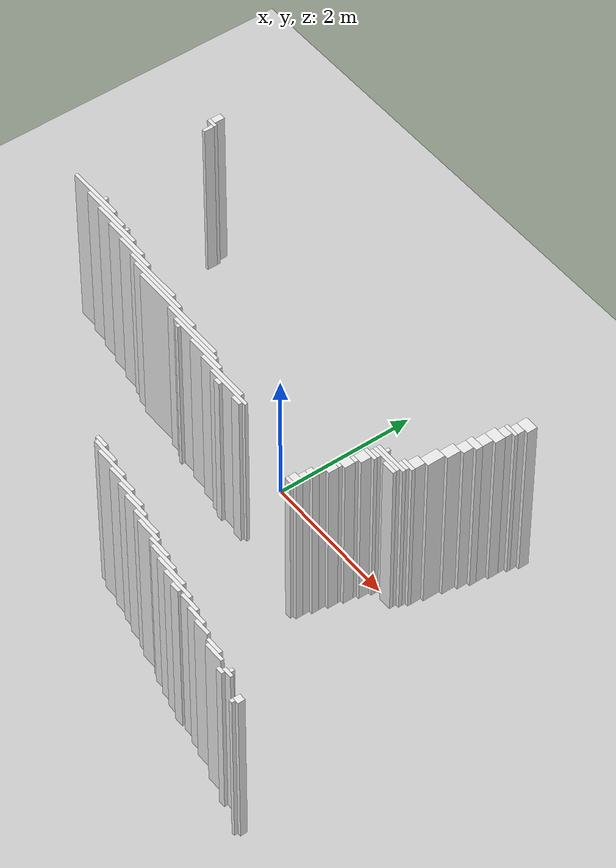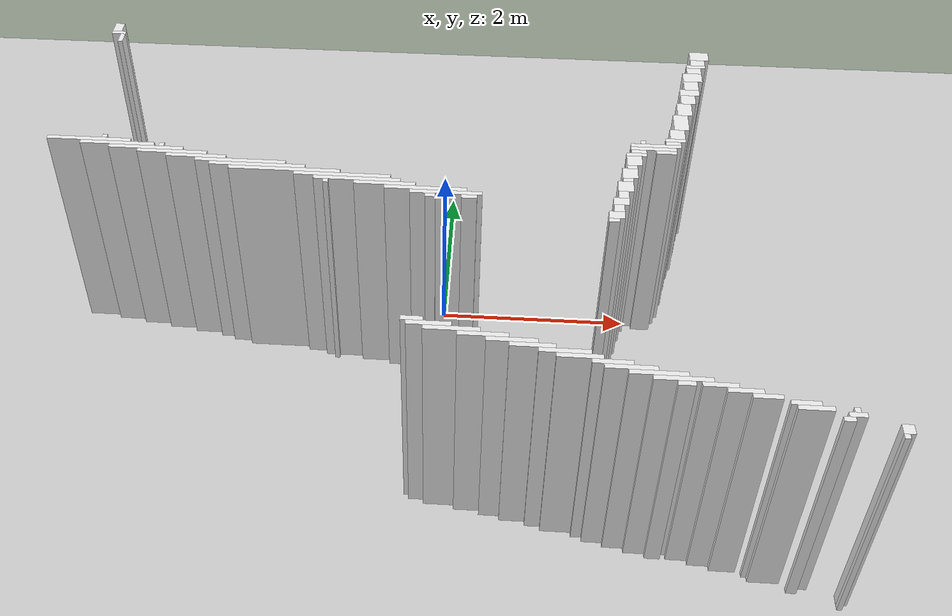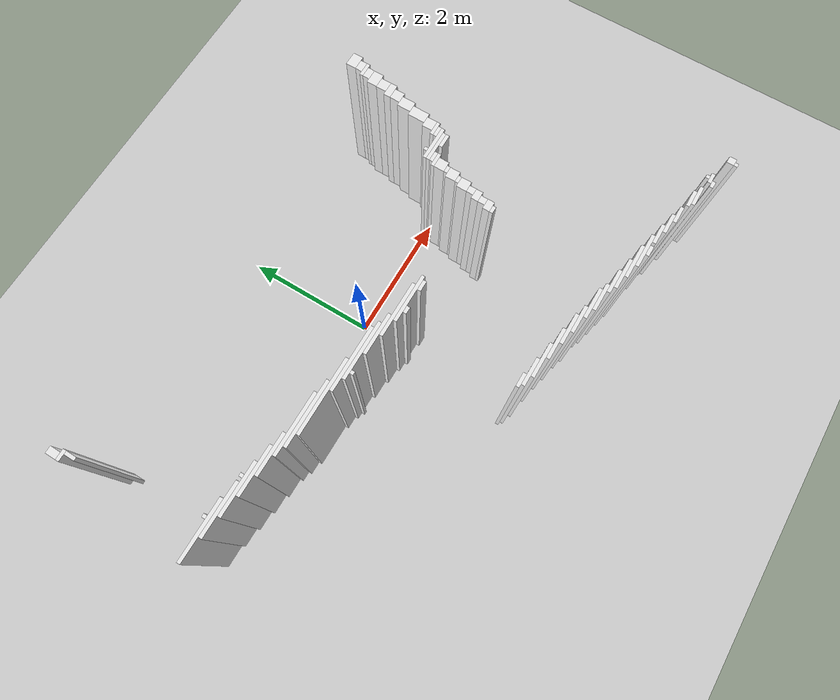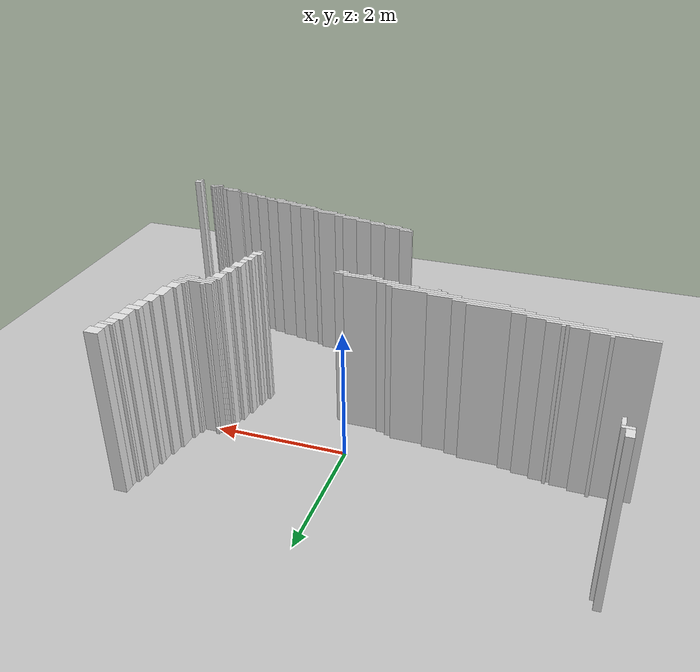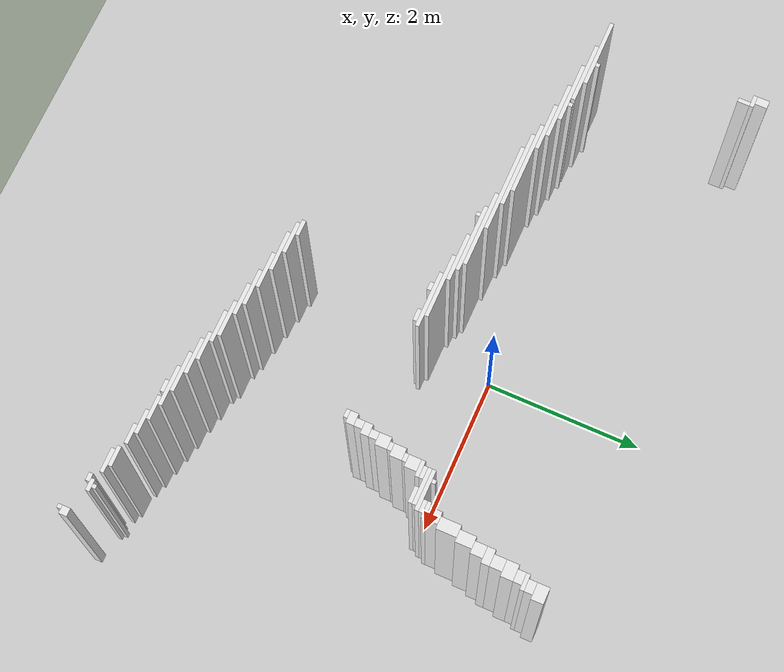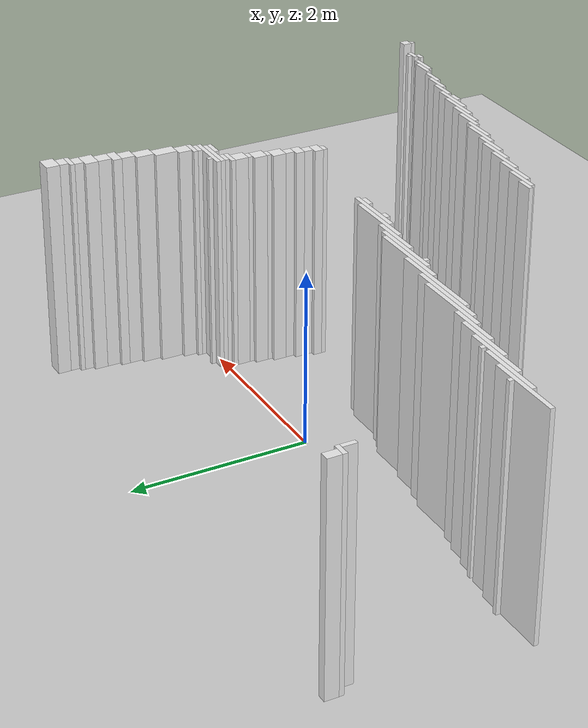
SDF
<sdf version="1.7">
 <world name="occupancy_map_world">
  <model name="ground_plane">
   <static>true</static>
   <link name="link">
    <collision name="collision">
     <geometry><plane><normal>0 0 1</normal><size>25.380000000000003 18.84</size></plane></geometry>
    </collision>
    <visual name="visual">
     <geometry><plane><normal>0 0 1</normal><size>25.380000000000003 18.84</size></plane></geometry>
     <material>
      <script><uri>file://media/materials/scripts/gazebo.material</uri><name>Gazebo/Grey</name></script>
     </material>
    </visual>
   </link>
  </model>
  <model name="wall_36">
   <static>true</static>
   <pose>-3.7540000000000013 1.803 1.25 0 0 0.0</pose>
   <link name="link">
    <collision name="collision">
     <geometry><box><size>0.1 0.15000000000000002 2.5</size></box></geometry>
    </collision>
    <visual name="visual">
     <geometry><box><size>0.1 0.15000000000000002 2.5</size></box></geometry>
     <material>
      <script><uri>file://media/materials/scripts/gazebo.material</uri><name>Gazebo/White</name></script>
     </material>
    </visual>
   </link>
  </model>
  <model name="wall_57">
   <static>true</static>
   <pose>-3.729000000000001 1.7030000000000003 1.25 0 0 0.0</pose>
   <link name="link">
    <collision name="collision">
     <geometry><box><size>0.15000000000000002 0.05 2.5</size></box></geometry>
    </collision>
    <visual name="visual">
     <geometry><box><size>0.15000000000000002 0.05 2.5</size></box></geometry>
     <material>
      <script><uri>file://media/materials/scripts/gazebo.material</uri><name>Gazebo/White</name></script>
     </material>
    </visual>
   </link>
  </model>
  <model name="wall_139">
   <static>true</static>
   <pose>3.521000000000001 -3.2970000000000006 1.25 0 0 0.0</pose>
   <link name="link">
    <collision name="collision"><geometry><box><size>0.05 0.05 2.5</size></box></geometry></collision>
    <visual name="visual">
     <geometry><box><size>0.05 0.05 2.5</size></box></geometry>
     <material>
      <script><uri>file://media/materials/scripts/gazebo.material</uri><name>Gazebo/White</name></script>
     </material>
    </visual>
   </link>
  </model>
  <model name="wall_148">
   <static>true</static>
   <pose>2.596 1.4530000000000003 1.25 0 0 0.0</pose>
   <link name="link">
    <collision name="collision"><geometry><box><size>0.2 0.05 2.5</size></box></geometry></collision>
    <visual name="visual">
     <geometry><box><size>0.2 0.05 2.5</size></box></geometry>
     <material>
      <script><uri>file://media/materials/scripts/gazebo.material</uri><name>Gazebo/White</name></script>
     </material>
    </visual>
   </link>
  </model>
  <model name="wall_207">
   <static>true</static>
   <pose>1.721 -0.8220000000000001 1.25 0 0 0.0</pose>
   <link name="link">
    <collision name="collision">
     <geometry><box><size>0.15000000000000002 0.1 2.5</size></box></geometry>
    </collision>
    <visual name="visual">
     <geometry><box><size>0.15000000000000002 0.1 2.5</size></box></geometry>
     <material>
      <script><uri>file://media/materials/scripts/gazebo.material</uri><name>Gazebo/White</name></script>
     </material>
    </visual>
   </link>
  </model>
  <model name="wall_212">
   <static>true</static>
   <pose>1.7710000000000008 -0.5970000000000004 1.25 0 0 0.0</pose>
   <link name="link">
    <collision name="collision">
     <geometry><box><size>0.15000000000000002 0.15000000000000002 2.5</size></box></geometry>
    </collision>
    <visual name="visual">
     <geometry><box><size>0.15000000000000002 0.15000000000000002 2.5</size></box></geometry>
     <material>
      <script><uri>file://media/materials/scripts/gazebo.material</uri><name>Gazebo/White</name></script>
     </material>
    </visual>
   </link>
  </model>
  <model name="wall_297">
   <static>true</static>
   <pose>-3.6790000000000003 1.6029999999999998 1.25 0 0 0.0</pose>
   <link name="link">
    <collision name="collision">
     <geometry><box><size>0.05 0.15000000000000002 2.5</size></box></geometry>
    </collision>
    <visual name="visual">
     <geometry><box><size>0.05 0.15000000000000002 2.5</size></box></geometry>
     <material>
      <script><uri>file://media/materials/scripts/gazebo.material</uri><name>Gazebo/White</name></script>
     </material>
    </visual>
   </link>
  </model>
  <model name="wall_321">
   <static>true</static>
   <pose>2.646000000000001 1.6529999999999996 1.25 0 0 0.0</pose>
   <link name="link">
    <collision name="collision">
     <geometry><box><size>0.2 0.15000000000000002 2.5</size></box></geometry>
    </collision>
    <visual name="visual">
     <geometry><box><size>0.2 0.15000000000000002 2.5</size></box></geometry>
     <material>
      <script><uri>file://media/materials/scripts/gazebo.material</uri><name>Gazebo/White</name></script>
     </material>
    </visual>
   </link>
  </model>
  <model name="wall_325">
   <static>true</static>
   <pose>2.6209999999999987 1.5279999999999996 1.25 0 0 0.0</pose>
   <link name="link">
    <collision name="collision">
     <geometry><box><size>0.15000000000000002 0.1 2.5</size></box></geometry>
    </collision>
    <visual name="visual">
     <geometry><box><size>0.15000000000000002 0.1 2.5</size></box></geometry>
     <material>
      <script><uri>file://media/materials/scripts/gazebo.material</uri><name>Gazebo/White</name></script>
     </material>
    </visual>
   </link>
  </model>
  <model name="wall_328">
   <static>true</static>
   <pose>2.5710000000000015 1.3780000000000001 1.25 0 0 0.0</pose>
   <link name="link">
    <collision name="collision">
     <geometry><box><size>0.15000000000000002 0.1 2.5</size></box></geometry>
    </collision>
    <visual name="visual">
     <geometry><box><size>0.15000000000000002 0.1 2.5</size></box></geometry>
     <material>
      <script><uri>file://media/materials/scripts/gazebo.material</uri><name>Gazebo/White</name></script>
     </material>
    </visual>
   </link>
  </model>
  <model name="wall_329">
   <static>true</static>
   <pose>2.5459999999999994 1.2530000000000001 1.25 0 0 0.0</pose>
   <link name="link">
    <collision name="collision">
     <geometry><box><size>0.2 0.15000000000000002 2.5</size></box></geometry>
    </collision>
    <visual name="visual">
     <geometry><box><size>0.2 0.15000000000000002 2.5</size></box></geometry>
     <material>
      <script><uri>file://media/materials/scripts/gazebo.material</uri><name>Gazebo/White</name></script>
     </material>
    </visual>
   </link>
  </model>
  <model name="wall_331">
   <static>true</static>
   <pose>2.521000000000001 1.1029999999999998 1.25 0 0 0.0</pose>
   <link name="link">
    <collision name="collision">
     <geometry><box><size>0.15000000000000002 0.15000000000000002 2.5</size></box></geometry>
    </collision>
    <visual name="visual">
     <geometry><box><size>0.15000000000000002 0.15000000000000002 2.5</size></box></geometry>
     <material>
      <script><uri>file://media/materials/scripts/gazebo.material</uri><name>Gazebo/White</name></script>
     </material>
    </visual>
   </link>
  </model>
  <model name="wall_332">
   <static>true</static>
   <pose>2.4959999999999987 0.9779999999999998 1.25 0 0 0.0</pose>
   <link name="link">
    <collision name="collision"><geometry><box><size>0.2 0.1 2.5</size></box></geometry></collision>
    <visual name="visual">
     <geometry><box><size>0.2 0.1 2.5</size></box></geometry>
     <material>
      <script><uri>file://media/materials/scripts/gazebo.material</uri><name>Gazebo/White</name></script>
     </material>
    </visual>
   </link>
  </model>
  <model name="wall_333">
   <static>true</static>
   <pose>2.471 0.8529999999999998 1.25 0 0 0.0</pose>
   <link name="link">
    <collision name="collision">
     <geometry><box><size>0.15000000000000002 0.15000000000000002 2.5</size></box></geometry>
    </collision>
    <visual name="visual">
     <geometry><box><size>0.15000000000000002 0.15000000000000002 2.5</size></box></geometry>
     <material>
      <script><uri>file://media/materials/scripts/gazebo.material</uri><name>Gazebo/White</name></script>
     </material>
    </visual>
   </link>
  </model>
  <model name="wall_334">
   <static>true</static>
   <pose>2.4209999999999994 0.6779999999999999 1.25 0 0 0.0</pose>
   <link name="link">
    <collision name="collision">
     <geometry><box><size>0.15000000000000002 0.2 2.5</size></box></geometry>
    </collision>
    <visual name="visual">
     <geometry><box><size>0.15000000000000002 0.2 2.5</size></box></geometry>
     <material>
      <script><uri>file://media/materials/scripts/gazebo.material</uri><name>Gazebo/White</name></script>
     </material>
    </visual>
   </link>
  </model>
  <model name="wall_335">
   <static>true</static>
   <pose>2.3709999999999987 0.4530000000000003 1.25 0 0 0.0</pose>
   <link name="link">
    <collision name="collision">
     <geometry><box><size>0.15000000000000002 0.25 2.5</size></box></geometry>
    </collision>
    <visual name="visual">
     <geometry><box><size>0.15000000000000002 0.25 2.5</size></box></geometry>
     <material>
      <script><uri>file://media/materials/scripts/gazebo.material</uri><name>Gazebo/White</name></script>
     </material>
    </visual>
   </link>
  </model>
  <model name="wall_336">
   <static>true</static>
   <pose>2.3210000000000015 0.2530000000000001 1.25 0 0 0.0</pose>
   <link name="link">
    <collision name="collision">
     <geometry><box><size>0.15000000000000002 0.15000000000000002 2.5</size></box></geometry>
    </collision>
    <visual name="visual">
     <geometry><box><size>0.15000000000000002 0.15000000000000002 2.5</size></box></geometry>
     <material>
      <script><uri>file://media/materials/scripts/gazebo.material</uri><name>Gazebo/White</name></script>
     </material>
    </visual>
   </link>
  </model>
  <model name="wall_337">
   <static>true</static>
   <pose>2.2959999999999994 0.15299999999999958 1.25 0 0 0.0</pose>
   <link name="link">
    <collision name="collision"><geometry><box><size>0.2 0.05 2.5</size></box></geometry></collision>
    <visual name="visual">
     <geometry><box><size>0.2 0.05 2.5</size></box></geometry>
     <material>
      <script><uri>file://media/materials/scripts/gazebo.material</uri><name>Gazebo/White</name></script>
     </material>
    </visual>
   </link>
  </model>
  <model name="wall_338">
   <static>true</static>
   <pose>1.971 0.10299999999999976 1.25 0 0 0.0</pose>
   <link name="link">
    <collision name="collision"><geometry><box><size>0.05 0.05 2.5</size></box></geometry></collision>
    <visual name="visual">
     <geometry><box><size>0.05 0.05 2.5</size></box></geometry>
     <material>
      <script><uri>file://media/materials/scripts/gazebo.material</uri><name>Gazebo/White</name></script>
     </material>
    </visual>
   </link>
  </model>
  <model name="wall_339">
   <static>true</static>
   <pose>2.271000000000001 0.10299999999999976 1.25 0 0 0.0</pose>
   <link name="link">
    <collision name="collision">
     <geometry><box><size>0.15000000000000002 0.05 2.5</size></box></geometry>
    </collision>
    <visual name="visual">
     <geometry><box><size>0.15000000000000002 0.05 2.5</size></box></geometry>
     <material>
      <script><uri>file://media/materials/scripts/gazebo.material</uri><name>Gazebo/White</name></script>
     </material>
    </visual>
   </link>
  </model>
  <model name="wall_345">
   <static>true</static>
   <pose>2.096 0.052999999999999936 1.25 0 0 0.0</pose>
   <link name="link">
    <collision name="collision"><geometry><box><size>0.5 0.05 2.5</size></box></geometry></collision>
    <visual name="visual">
     <geometry><box><size>0.5 0.05 2.5</size></box></geometry>
     <material>
      <script><uri>file://media/materials/scripts/gazebo.material</uri><name>Gazebo/White</name></script>
     </material>
    </visual>
   </link>
  </model>
  <model name="wall_348">
   <static>true</static>
   <pose>2.0710000000000015 0.0030000000000001137 1.25 0 0 0.0</pose>
   <link name="link">
    <collision name="collision"><geometry><box><size>0.45 0.05 2.5</size></box></geometry></collision>
    <visual name="visual">
     <geometry><box><size>0.45 0.05 2.5</size></box></geometry>
     <material>
      <script><uri>file://media/materials/scripts/gazebo.material</uri><name>Gazebo/White</name></script>
     </material>
    </visual>
   </link>
  </model>
  <model name="wall_351">
   <static>true</static>
   <pose>1.9209999999999994 -0.0470000000000006 1.25 0 0 0.0</pose>
   <link name="link">
    <collision name="collision">
     <geometry><box><size>0.15000000000000002 0.05 2.5</size></box></geometry>
    </collision>
    <visual name="visual">
     <geometry><box><size>0.15000000000000002 0.05 2.5</size></box></geometry>
     <material>
      <script><uri>file://media/materials/scripts/gazebo.material</uri><name>Gazebo/White</name></script>
     </material>
    </visual>
   </link>
  </model>
  <model name="wall_352">
   <static>true</static>
   <pose>2.1960000000000015 -0.0470000000000006 1.25 0 0 0.0</pose>
   <link name="link">
    <collision name="collision"><geometry><box><size>0.2 0.05 2.5</size></box></geometry></collision>
    <visual name="visual">
     <geometry><box><size>0.2 0.05 2.5</size></box></geometry>
     <material>
      <script><uri>file://media/materials/scripts/gazebo.material</uri><name>Gazebo/White</name></script>
     </material>
    </visual>
   </link>
  </model>
  <model name="wall_356">
   <static>true</static>
   <pose>1.8960000000000008 -0.09700000000000042 1.25 0 0 0.0</pose>
   <link name="link">
    <collision name="collision"><geometry><box><size>0.2 0.05 2.5</size></box></geometry></collision>
    <visual name="visual">
     <geometry><box><size>0.2 0.05 2.5</size></box></geometry>
     <material>
      <script><uri>file://media/materials/scripts/gazebo.material</uri><name>Gazebo/White</name></script>
     </material>
    </visual>
   </link>
  </model>
  <model name="wall_361">
   <static>true</static>
   <pose>-3.4290000000000003 -0.14700000000000024 1.25 0 0 0.0</pose>
   <link name="link">
    <collision name="collision"><geometry><box><size>0.05 0.05 2.5</size></box></geometry></collision>
    <visual name="visual">
     <geometry><box><size>0.05 0.05 2.5</size></box></geometry>
     <material>
      <script><uri>file://media/materials/scripts/gazebo.material</uri><name>Gazebo/White</name></script>
     </material>
    </visual>
   </link>
  </model>
  <model name="wall_362">
   <static>true</static>
   <pose>1.8709999999999987 -0.19700000000000006 1.25 0 0 0.0</pose>
   <link name="link">
    <collision name="collision">
     <geometry><box><size>0.15000000000000002 0.15000000000000002 2.5</size></box></geometry>
    </collision>
    <visual name="visual">
     <geometry><box><size>0.15000000000000002 0.15000000000000002 2.5</size></box></geometry>
     <material>
      <script><uri>file://media/materials/scripts/gazebo.material</uri><name>Gazebo/White</name></script>
     </material>
    </visual>
   </link>
  </model>
  <model name="wall_365">
   <static>true</static>
   <pose>-3.5790000000000006 -0.19700000000000006 1.25 0 0 0.0</pose>
   <link name="link">
    <collision name="collision">
     <geometry><box><size>0.8500000000000001 0.05 2.5</size></box></geometry>
    </collision>
    <visual name="visual">
     <geometry><box><size>0.8500000000000001 0.05 2.5</size></box></geometry>
     <material>
      <script><uri>file://media/materials/scripts/gazebo.material</uri><name>Gazebo/White</name></script>
     </material>
    </visual>
   </link>
  </model>
  <model name="wall_366">
   <static>true</static>
   <pose>-3.279 -0.2469999999999999 1.25 0 0 0.0</pose>
   <link name="link">
    <collision name="collision"><geometry><box><size>0.75 0.05 2.5</size></box></geometry></collision>
    <visual name="visual">
     <geometry><box><size>0.75 0.05 2.5</size></box></geometry>
     <material>
      <script><uri>file://media/materials/scripts/gazebo.material</uri><name>Gazebo/White</name></script>
     </material>
    </visual>
   </link>
  </model>
  <model name="wall_367">
   <static>true</static>
   <pose>-2.8290000000000006 -0.2469999999999999 1.25 0 0 0.0</pose>
   <link name="link">
    <collision name="collision"><geometry><box><size>0.05 0.05 2.5</size></box></geometry></collision>
    <visual name="visual">
     <geometry><box><size>0.05 0.05 2.5</size></box></geometry>
     <material>
      <script><uri>file://media/materials/scripts/gazebo.material</uri><name>Gazebo/White</name></script>
     </material>
    </visual>
   </link>
  </model>
  <model name="wall_368">
   <static>true</static>
   <pose>-2.979000000000001 -0.2970000000000006 1.25 0 0 0.0</pose>
   <link name="link">
    <collision name="collision"><geometry><box><size>0.75 0.05 2.5</size></box></geometry></collision>
    <visual name="visual">
     <geometry><box><size>0.75 0.05 2.5</size></box></geometry>
     <material>
      <script><uri>file://media/materials/scripts/gazebo.material</uri><name>Gazebo/White</name></script>
     </material>
    </visual>
   </link>
  </model>
  <model name="wall_369">
   <static>true</static>
   <pose>1.846 -0.2970000000000006 1.25 0 0 0.0</pose>
   <link name="link">
    <collision name="collision"><geometry><box><size>0.1 0.05 2.5</size></box></geometry></collision>
    <visual name="visual">
     <geometry><box><size>0.1 0.05 2.5</size></box></geometry>
     <material>
      <script><uri>file://media/materials/scripts/gazebo.material</uri><name>Gazebo/White</name></script>
     </material>
    </visual>
   </link>
  </model>
  <model name="wall_370">
   <static>true</static>
   <pose>-2.7040000000000006 -0.3470000000000004 1.25 0 0 0.0</pose>
   <link name="link">
    <collision name="collision">
     <geometry><box><size>0.7000000000000001 0.05 2.5</size></box></geometry>
    </collision>
    <visual name="visual">
     <geometry><box><size>0.7000000000000001 0.05 2.5</size></box></geometry>
     <material>
      <script><uri>file://media/materials/scripts/gazebo.material</uri><name>Gazebo/White</name></script>
     </material>
    </visual>
   </link>
  </model>
  <model name="wall_371">
   <static>true</static>
   <pose>1.8210000000000015 -0.39700000000000024 1.25 0 0 0.0</pose>
   <link name="link">
    <collision name="collision">
     <geometry><box><size>0.15000000000000002 0.15000000000000002 2.5</size></box></geometry>
    </collision>
    <visual name="visual">
     <geometry><box><size>0.15000000000000002 0.15000000000000002 2.5</size></box></geometry>
     <material>
      <script><uri>file://media/materials/scripts/gazebo.material</uri><name>Gazebo/White</name></script>
     </material>
    </visual>
   </link>
  </model>
  <model name="wall_372">
   <static>true</static>
   <pose>-2.4540000000000006 -0.39700000000000024 1.25 0 0 0.0</pose>
   <link name="link">
    <collision name="collision">
     <geometry><box><size>0.6000000000000001 0.05 2.5</size></box></geometry>
    </collision>
    <visual name="visual">
     <geometry><box><size>0.6000000000000001 0.05 2.5</size></box></geometry>
     <material>
      <script><uri>file://media/materials/scripts/gazebo.material</uri><name>Gazebo/White</name></script>
     </material>
    </visual>
   </link>
  </model>
  <model name="wall_373">
   <static>true</static>
   <pose>-2.0040000000000013 -0.44700000000000006 1.25 0 0 0.0</pose>
   <link name="link">
    <collision name="collision"><geometry><box><size>0.9 0.05 2.5</size></box></geometry></collision>
    <visual name="visual">
     <geometry><box><size>0.9 0.05 2.5</size></box></geometry>
     <material>
      <script><uri>file://media/materials/scripts/gazebo.material</uri><name>Gazebo/White</name></script>
     </material>
    </visual>
   </link>
  </model>
  <model name="wall_374">
   <static>true</static>
   <pose>-1.8290000000000006 -0.49700000000000033 1.25 0 0 0.0</pose>
   <link name="link">
    <collision name="collision">
     <geometry><box><size>0.9500000000000001 0.05 2.5</size></box></geometry>
    </collision>
    <visual name="visual">
     <geometry><box><size>0.9500000000000001 0.05 2.5</size></box></geometry>
     <material>
      <script><uri>file://media/materials/scripts/gazebo.material</uri><name>Gazebo/White</name></script>
     </material>
    </visual>
   </link>
  </model>
  <model name="wall_375">
   <static>true</static>
   <pose>1.7959999999999994 -0.49700000000000033 1.25 0 0 0.0</pose>
   <link name="link">
    <collision name="collision"><geometry><box><size>0.1 0.05 2.5</size></box></geometry></collision>
    <visual name="visual">
     <geometry><box><size>0.1 0.05 2.5</size></box></geometry>
     <material>
      <script><uri>file://media/materials/scripts/gazebo.material</uri><name>Gazebo/White</name></script>
     </material>
    </visual>
   </link>
  </model>
  <model name="wall_376">
   <static>true</static>
   <pose>-1.554000000000002 -0.5470000000000002 1.25 0 0 0.0</pose>
   <link name="link">
    <collision name="collision"><geometry><box><size>1.1 0.05 2.5</size></box></geometry></collision>
    <visual name="visual">
     <geometry><box><size>1.1 0.05 2.5</size></box></geometry>
     <material>
      <script><uri>file://media/materials/scripts/gazebo.material</uri><name>Gazebo/White</name></script>
     </material>
    </visual>
   </link>
  </model>
  <model name="wall_377">
   <static>true</static>
   <pose>-0.9789999999999992 -0.5970000000000004 1.25 0 0 0.0</pose>
   <link name="link">
    <collision name="collision">
     <geometry><box><size>0.9500000000000001 0.05 2.5</size></box></geometry>
    </collision>
    <visual name="visual">
     <geometry><box><size>0.9500000000000001 0.05 2.5</size></box></geometry>
     <material>
      <script><uri>file://media/materials/scripts/gazebo.material</uri><name>Gazebo/White</name></script>
     </material>
    </visual>
   </link>
  </model>
  <model name="wall_378">
   <static>true</static>
   <pose>-0.8290000000000006 -0.6470000000000002 1.25 0 0 0.0</pose>
   <link name="link">
    <collision name="collision">
     <geometry><box><size>0.8500000000000001 0.05 2.5</size></box></geometry>
    </collision>
    <visual name="visual">
     <geometry><box><size>0.8500000000000001 0.05 2.5</size></box></geometry>
     <material>
      <script><uri>file://media/materials/scripts/gazebo.material</uri><name>Gazebo/White</name></script>
     </material>
    </visual>
   </link>
  </model>
  <model name="wall_379">
   <static>true</static>
   <pose>-1.1290000000000013 -0.6970000000000001 1.25 0 0 0.0</pose>
   <link name="link">
    <collision name="collision"><geometry><box><size>0.05 0.05 2.5</size></box></geometry></collision>
    <visual name="visual">
     <geometry><box><size>0.05 0.05 2.5</size></box></geometry>
     <material>
      <script><uri>file://media/materials/scripts/gazebo.material</uri><name>Gazebo/White</name></script>
     </material>
    </visual>
   </link>
  </model>
  <model name="wall_380">
   <static>true</static>
   <pose>-0.554000000000002 -0.6970000000000001 1.25 0 0 0.0</pose>
   <link name="link">
    <collision name="collision">
     <geometry><box><size>0.6000000000000001 0.05 2.5</size></box></geometry>
    </collision>
    <visual name="visual">
     <geometry><box><size>0.6000000000000001 0.05 2.5</size></box></geometry>
     <material>
      <script><uri>file://media/materials/scripts/gazebo.material</uri><name>Gazebo/White</name></script>
     </material>
    </visual>
   </link>
  </model>
  <model name="wall_381">
   <static>true</static>
   <pose>1.7459999999999987 -0.7220000000000004 1.25 0 0 0.0</pose>
   <link name="link">
    <collision name="collision"><geometry><box><size>0.1 0.1 2.5</size></box></geometry></collision>
    <visual name="visual">
     <geometry><box><size>0.1 0.1 2.5</size></box></geometry>
     <material>
      <script><uri>file://media/materials/scripts/gazebo.material</uri><name>Gazebo/White</name></script>
     </material>
    </visual>
   </link>
  </model>
  <model name="wall_382">
   <static>true</static>
   <pose>-0.15399999999999991 -0.7470000000000003 1.25 0 0 0.0</pose>
   <link name="link">
    <collision name="collision"><geometry><box><size>0.8 0.05 2.5</size></box></geometry></collision>
    <visual name="visual">
     <geometry><box><size>0.8 0.05 2.5</size></box></geometry>
     <material>
      <script><uri>file://media/materials/scripts/gazebo.material</uri><name>Gazebo/White</name></script>
     </material>
    </visual>
   </link>
  </model>
  <model name="wall_383">
   <static>true</static>
   <pose>0.045999999999999375 -0.7970000000000002 1.25 0 0 0.0</pose>
   <link name="link">
    <collision name="collision">
     <geometry><box><size>0.7000000000000001 0.05 2.5</size></box></geometry>
    </collision>
    <visual name="visual">
     <geometry><box><size>0.7000000000000001 0.05 2.5</size></box></geometry>
     <material>
      <script><uri>file://media/materials/scripts/gazebo.material</uri><name>Gazebo/White</name></script>
     </material>
    </visual>
   </link>
  </model>
  <model name="wall_384">
   <static>true</static>
   <pose>-0.1039999999999992 -0.8470000000000004 1.25 0 0 0.0</pose>
   <link name="link">
    <collision name="collision"><geometry><box><size>0.1 0.05 2.5</size></box></geometry></collision>
    <visual name="visual">
     <geometry><box><size>0.1 0.05 2.5</size></box></geometry>
     <material>
      <script><uri>file://media/materials/scripts/gazebo.material</uri><name>Gazebo/White</name></script>
     </material>
    </visual>
   </link>
  </model>
  <model name="wall_385">
   <static>true</static>
   <pose>0.2710000000000008 -0.8470000000000004 1.25 0 0 0.0</pose>
   <link name="link">
    <collision name="collision">
     <geometry><box><size>0.15000000000000002 0.05 2.5</size></box></geometry>
    </collision>
    <visual name="visual">
     <geometry><box><size>0.15000000000000002 0.05 2.5</size></box></geometry>
     <material>
      <script><uri>file://media/materials/scripts/gazebo.material</uri><name>Gazebo/White</name></script>
     </material>
    </visual>
   </link>
  </model>
  <model name="wall_386">
   <static>true</static>
   <pose>1.6960000000000015 -0.9220000000000002 1.25 0 0 0.0</pose>
   <link name="link">
    <collision name="collision"><geometry><box><size>0.1 0.1 2.5</size></box></geometry></collision>
    <visual name="visual">
     <geometry><box><size>0.1 0.1 2.5</size></box></geometry>
     <material>
      <script><uri>file://media/materials/scripts/gazebo.material</uri><name>Gazebo/White</name></script>
     </material>
    </visual>
   </link>
  </model>
  <model name="wall_387">
   <static>true</static>
   <pose>1.6709999999999994 -1.0220000000000002 1.25 0 0 0.0</pose>
   <link name="link">
    <collision name="collision">
     <geometry><box><size>0.15000000000000002 0.1 2.5</size></box></geometry>
    </collision>
    <visual name="visual">
     <geometry><box><size>0.15000000000000002 0.1 2.5</size></box></geometry>
     <material>
      <script><uri>file://media/materials/scripts/gazebo.material</uri><name>Gazebo/White</name></script>
     </material>
    </visual>
   </link>
  </model>
  <model name="wall_388">
   <static>true</static>
   <pose>1.6460000000000008 -1.0970000000000004 1.25 0 0 0.0</pose>
   <link name="link">
    <collision name="collision"><geometry><box><size>0.1 0.05 2.5</size></box></geometry></collision>
    <visual name="visual">
     <geometry><box><size>0.1 0.05 2.5</size></box></geometry>
     <material>
      <script><uri>file://media/materials/scripts/gazebo.material</uri><name>Gazebo/White</name></script>
     </material>
    </visual>
   </link>
  </model>
  <model name="wall_389">
   <static>true</static>
   <pose>-0.15399999999999991 -2.4970000000000003 1.25 0 0 0.0</pose>
   <link name="link">
    <collision name="collision"><geometry><box><size>0.2 0.05 2.5</size></box></geometry></collision>
    <visual name="visual">
     <geometry><box><size>0.2 0.05 2.5</size></box></geometry>
     <material>
      <script><uri>file://media/materials/scripts/gazebo.material</uri><name>Gazebo/White</name></script>
     </material>
    </visual>
   </link>
  </model>
  <model name="wall_390">
   <static>true</static>
   <pose>-0.004000000000001336 -2.5470000000000006 1.25 0 0 0.0</pose>
   <link name="link">
    <collision name="collision"><geometry><box><size>0.4 0.05 2.5</size></box></geometry></collision>
    <visual name="visual">
     <geometry><box><size>0.4 0.05 2.5</size></box></geometry>
     <material>
      <script><uri>file://media/materials/scripts/gazebo.material</uri><name>Gazebo/White</name></script>
     </material>
    </visual>
   </link>
  </model>
  <model name="wall_391">
   <static>true</static>
   <pose>0.19599999999999795 -2.5970000000000004 1.25 0 0 0.0</pose>
   <link name="link">
    <collision name="collision"><geometry><box><size>0.5 0.05 2.5</size></box></geometry></collision>
    <visual name="visual">
     <geometry><box><size>0.5 0.05 2.5</size></box></geometry>
     <material>
      <script><uri>file://media/materials/scripts/gazebo.material</uri><name>Gazebo/White</name></script>
     </material>
    </visual>
   </link>
  </model>
  <model name="wall_392">
   <static>true</static>
   <pose>0.4710000000000001 -2.6470000000000002 1.25 0 0 0.0</pose>
   <link name="link">
    <collision name="collision"><geometry><box><size>0.45 0.05 2.5</size></box></geometry></collision>
    <visual name="visual">
     <geometry><box><size>0.45 0.05 2.5</size></box></geometry>
     <material>
      <script><uri>file://media/materials/scripts/gazebo.material</uri><name>Gazebo/White</name></script>
     </material>
    </visual>
   </link>
  </model>
  <model name="wall_393">
   <static>true</static>
   <pose>0.7210000000000001 -2.697 1.25 0 0 0.0</pose>
   <link name="link">
    <collision name="collision"><geometry><box><size>0.45 0.05 2.5</size></box></geometry></collision>
    <visual name="visual">
     <geometry><box><size>0.45 0.05 2.5</size></box></geometry>
     <material>
      <script><uri>file://media/materials/scripts/gazebo.material</uri><name>Gazebo/White</name></script>
     </material>
    </visual>
   </link>
  </model>
  <model name="wall_394">
   <static>true</static>
   <pose>0.8960000000000008 -2.7470000000000003 1.25 0 0 0.0</pose>
   <link name="link">
    <collision name="collision"><geometry><box><size>0.4 0.05 2.5</size></box></geometry></collision>
    <visual name="visual">
     <geometry><box><size>0.4 0.05 2.5</size></box></geometry>
     <material>
      <script><uri>file://media/materials/scripts/gazebo.material</uri><name>Gazebo/White</name></script>
     </material>
    </visual>
   </link>
  </model>
  <model name="wall_395">
   <static>true</static>
   <pose>1.1709999999999994 -2.7970000000000006 1.25 0 0 0.0</pose>
   <link name="link">
    <collision name="collision"><geometry><box><size>0.45 0.05 2.5</size></box></geometry></collision>
    <visual name="visual">
     <geometry><box><size>0.45 0.05 2.5</size></box></geometry>
     <material>
      <script><uri>file://media/materials/scripts/gazebo.material</uri><name>Gazebo/White</name></script>
     </material>
    </visual>
   </link>
  </model>
  <model name="wall_396">
   <static>true</static>
   <pose>1.2959999999999994 -2.8470000000000004 1.25 0 0 0.0</pose>
   <link name="link">
    <collision name="collision"><geometry><box><size>0.4 0.05 2.5</size></box></geometry></collision>
    <visual name="visual">
     <geometry><box><size>0.4 0.05 2.5</size></box></geometry>
     <material>
      <script><uri>file://media/materials/scripts/gazebo.material</uri><name>Gazebo/White</name></script>
     </material>
    </visual>
   </link>
  </model>
  <model name="wall_397">
   <static>true</static>
   <pose>1.5710000000000015 -2.8970000000000002 1.25 0 0 0.0</pose>
   <link name="link">
    <collision name="collision">
     <geometry><box><size>0.35000000000000003 0.05 2.5</size></box></geometry>
    </collision>
    <visual name="visual">
     <geometry><box><size>0.35000000000000003 0.05 2.5</size></box></geometry>
     <material>
      <script><uri>file://media/materials/scripts/gazebo.material</uri><name>Gazebo/White</name></script>
     </material>
    </visual>
   </link>
  </model>
  <model name="wall_398">
   <static>true</static>
   <pose>1.721 -2.947 1.25 0 0 0.0</pose>
   <link name="link">
    <collision name="collision"><geometry><box><size>0.45 0.05 2.5</size></box></geometry></collision>
    <visual name="visual">
     <geometry><box><size>0.45 0.05 2.5</size></box></geometry>
     <material>
      <script><uri>file://media/materials/scripts/gazebo.material</uri><name>Gazebo/White</name></script>
     </material>
    </visual>
   </link>
  </model>
  <model name="wall_399">
   <static>true</static>
   <pose>1.9460000000000015 -2.9970000000000003 1.25 0 0 0.0</pose>
   <link name="link">
    <collision name="collision"><geometry><box><size>0.5 0.05 2.5</size></box></geometry></collision>
    <visual name="visual">
     <geometry><box><size>0.5 0.05 2.5</size></box></geometry>
     <material>
      <script><uri>file://media/materials/scripts/gazebo.material</uri><name>Gazebo/White</name></script>
     </material>
    </visual>
   </link>
  </model>
  <model name="wall_400">
   <static>true</static>
   <pose>2.146000000000001 -3.0470000000000006 1.25 0 0 0.0</pose>
   <link name="link">
    <collision name="collision"><geometry><box><size>0.5 0.05 2.5</size></box></geometry></collision>
    <visual name="visual">
     <geometry><box><size>0.5 0.05 2.5</size></box></geometry>
     <material>
      <script><uri>file://media/materials/scripts/gazebo.material</uri><name>Gazebo/White</name></script>
     </material>
    </visual>
   </link>
  </model>
  <model name="wall_401">
   <static>true</static>
   <pose>2.1709999999999994 -3.0970000000000004 1.25 0 0 0.0</pose>
   <link name="link">
    <collision name="collision">
     <geometry><box><size>0.15000000000000002 0.05 2.5</size></box></geometry>
    </collision>
    <visual name="visual">
     <geometry><box><size>0.15000000000000002 0.05 2.5</size></box></geometry>
     <material>
      <script><uri>file://media/materials/scripts/gazebo.material</uri><name>Gazebo/White</name></script>
     </material>
    </visual>
   </link>
  </model>
  <model name="wall_402">
   <static>true</static>
   <pose>2.4460000000000015 -3.0970000000000004 1.25 0 0 0.0</pose>
   <link name="link">
    <collision name="collision">
     <geometry><box><size>0.30000000000000004 0.05 2.5</size></box></geometry>
    </collision>
    <visual name="visual">
     <geometry><box><size>0.30000000000000004 0.05 2.5</size></box></geometry>
     <material>
      <script><uri>file://media/materials/scripts/gazebo.material</uri><name>Gazebo/White</name></script>
     </material>
    </visual>
   </link>
  </model>
  <model name="wall_403">
   <static>true</static>
   <pose>2.646000000000001 -3.1470000000000002 1.25 0 0 0.0</pose>
   <link name="link">
    <collision name="collision">
     <geometry><box><size>0.30000000000000004 0.05 2.5</size></box></geometry>
    </collision>
    <visual name="visual">
     <geometry><box><size>0.30000000000000004 0.05 2.5</size></box></geometry>
     <material>
      <script><uri>file://media/materials/scripts/gazebo.material</uri><name>Gazebo/White</name></script>
     </material>
    </visual>
   </link>
  </model>
  <model name="wall_404">
   <static>true</static>
   <pose>2.8210000000000015 -3.197 1.25 0 0 0.0</pose>
   <link name="link">
    <collision name="collision"><geometry><box><size>0.25 0.05 2.5</size></box></geometry></collision>
    <visual name="visual">
     <geometry><box><size>0.25 0.05 2.5</size></box></geometry>
     <material>
      <script><uri>file://media/materials/scripts/gazebo.material</uri><name>Gazebo/White</name></script>
     </material>
    </visual>
   </link>
  </model>
  <model name="wall_405">
   <static>true</static>
   <pose>3.1209999999999987 -3.2470000000000003 1.25 0 0 0.0</pose>
   <link name="link">
    <collision name="collision"><geometry><box><size>0.25 0.05 2.5</size></box></geometry></collision>
    <visual name="visual">
     <geometry><box><size>0.25 0.05 2.5</size></box></geometry>
     <material>
      <script><uri>file://media/materials/scripts/gazebo.material</uri><name>Gazebo/White</name></script>
     </material>
    </visual>
   </link>
  </model>
  <model name="wall_406">
   <static>true</static>
   <pose>3.1960000000000015 -3.2970000000000006 1.25 0 0 0.0</pose>
   <link name="link">
    <collision name="collision">
     <geometry><box><size>0.30000000000000004 0.05 2.5</size></box></geometry>
    </collision>
    <visual name="visual">
     <geometry><box><size>0.30000000000000004 0.05 2.5</size></box></geometry>
     <material>
      <script><uri>file://media/materials/scripts/gazebo.material</uri><name>Gazebo/White</name></script>
     </material>
    </visual>
   </link>
  </model>
  <model name="wall_407">
   <static>true</static>
   <pose>3.521000000000001 -3.3470000000000004 1.25 0 0 0.0</pose>
   <link name="link">
    <collision name="collision">
     <geometry><box><size>0.15000000000000002 0.05 2.5</size></box></geometry>
    </collision>
    <visual name="visual">
     <geometry><box><size>0.15000000000000002 0.05 2.5</size></box></geometry>
     <material>
      <script><uri>file://media/materials/scripts/gazebo.material</uri><name>Gazebo/White</name></script>
     </material>
    </visual>
   </link>
  </model>
  <model name="wall_408">
   <static>true</static>
   <pose>3.4460000000000015 -3.3970000000000002 1.25 0 0 0.0</pose>
   <link name="link">
    <collision name="collision"><geometry><box><size>0.1 0.05 2.5</size></box></geometry></collision>
    <visual name="visual">
     <geometry><box><size>0.1 0.05 2.5</size></box></geometry>
     <material>
      <script><uri>file://media/materials/scripts/gazebo.material</uri><name>Gazebo/White</name></script>
     </material>
    </visual>
   </link>
  </model>
  <model name="wall_409">
   <static>true</static>
   <pose>3.896000000000001 -3.4720000000000004 1.25 0 0 0.0</pose>
   <link name="link">
    <collision name="collision"><geometry><box><size>0.1 0.1 2.5</size></box></geometry></collision>
    <visual name="visual">
     <geometry><box><size>0.1 0.1 2.5</size></box></geometry>
     <material>
      <script><uri>file://media/materials/scripts/gazebo.material</uri><name>Gazebo/White</name></script>
     </material>
    </visual>
   </link>
  </model>
  <model name="wall_410">
   <static>true</static>
   <pose>3.8709999999999987 -3.5470000000000006 1.25 0 0 0.0</pose>
   <link name="link">
    <collision name="collision"><geometry><box><size>0.05 0.05 2.5</size></box></geometry></collision>
    <visual name="visual">
     <geometry><box><size>0.05 0.05 2.5</size></box></geometry>
     <material>
      <script><uri>file://media/materials/scripts/gazebo.material</uri><name>Gazebo/White</name></script>
     </material>
    </visual>
   </link>
  </model>
  <model name="wall_449">
   <static>true</static>
   <pose>-3.4290000000000003 -0.14700000000000024 1.25 0 0 0.0</pose>
   <link name="link">
    <collision name="collision"><geometry><box><size>0.05 0.05 2.5</size></box></geometry></collision>
    <visual name="visual">
     <geometry><box><size>0.05 0.05 2.5</size></box></geometry>
     <material>
      <script><uri>file://media/materials/scripts/gazebo.material</uri><name>Gazebo/White</name></script>
     </material>
    </visual>
   </link>
  </model>
  <model name="wall_470">
   <static>true</static>
   <pose>-3.6790000000000003 1.6029999999999998 1.25 0 0 0.0</pose>
   <link name="link">
    <collision name="collision">
     <geometry><box><size>0.05 0.15000000000000002 2.5</size></box></geometry>
    </collision>
    <visual name="visual">
     <geometry><box><size>0.05 0.15000000000000002 2.5</size></box></geometry>
     <material>
      <script><uri>file://media/materials/scripts/gazebo.material</uri><name>Gazebo/White</name></script>
     </material>
    </visual>
   </link>
  </model>
  <model name="wall_476">
   <static>true</static>
   <pose>-2.8290000000000006 -0.2469999999999999 1.25 0 0 0.0</pose>
   <link name="link">
    <collision name="collision"><geometry><box><size>0.05 0.05 2.5</size></box></geometry></collision>
    <visual name="visual">
     <geometry><box><size>0.05 0.05 2.5</size></box></geometry>
     <material>
      <script><uri>file://media/materials/scripts/gazebo.material</uri><name>Gazebo/White</name></script>
     </material>
    </visual>
   </link>
  </model>
  <model name="wall_484">
   <static>true</static>
   <pose>-1.1290000000000013 -0.6970000000000001 1.25 0 0 0.0</pose>
   <link name="link">
    <collision name="collision"><geometry><box><size>0.05 0.05 2.5</size></box></geometry></collision>
    <visual name="visual">
     <geometry><box><size>0.05 0.05 2.5</size></box></geometry>
     <material>
      <script><uri>file://media/materials/scripts/gazebo.material</uri><name>Gazebo/White</name></script>
     </material>
    </visual>
   </link>
  </model>
  <model name="wall_489">
   <static>true</static>
   <pose>1.971 0.10299999999999976 1.25 0 0 0.0</pose>
   <link name="link">
    <collision name="collision"><geometry><box><size>0.05 0.05 2.5</size></box></geometry></collision>
    <visual name="visual">
     <geometry><box><size>0.05 0.05 2.5</size></box></geometry>
     <material>
      <script><uri>file://media/materials/scripts/gazebo.material</uri><name>Gazebo/White</name></script>
     </material>
    </visual>
   </link>
  </model>
  <model name="wall_494">
   <static>true</static>
   <pose>3.521000000000001 -3.2970000000000006 1.25 0 0 0.0</pose>
   <link name="link">
    <collision name="collision"><geometry><box><size>0.05 0.05 2.5</size></box></geometry></collision>
    <visual name="visual">
     <geometry><box><size>0.05 0.05 2.5</size></box></geometry>
     <material>
      <script><uri>file://media/materials/scripts/gazebo.material</uri><name>Gazebo/White</name></script>
     </material>
    </visual>
   </link>
  </model>
  <model name="wall_496">
   <static>true</static>
   <pose>3.8709999999999987 -3.5470000000000006 1.25 0 0 0.0</pose>
   <link name="link">
    <collision name="collision"><geometry><box><size>0.05 0.05 2.5</size></box></geometry></collision>
    <visual name="visual">
     <geometry><box><size>0.05 0.05 2.5</size></box></geometry>
     <material>
      <script><uri>file://media/materials/scripts/gazebo.material</uri><name>Gazebo/White</name></script>
     </material>
    </visual>
   </link>
  </model>
 </world>
</sdf>
